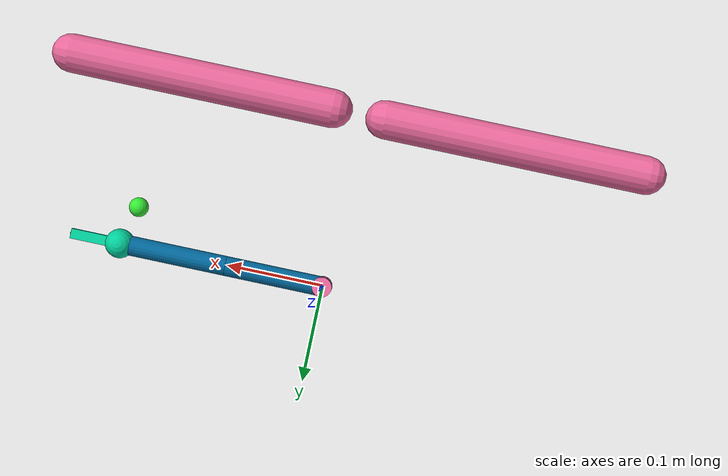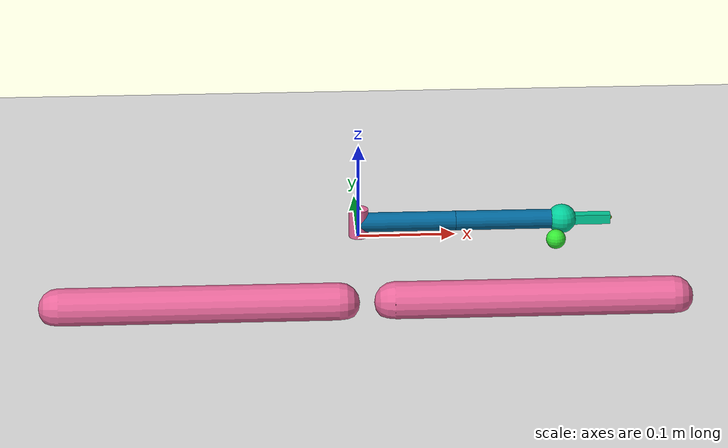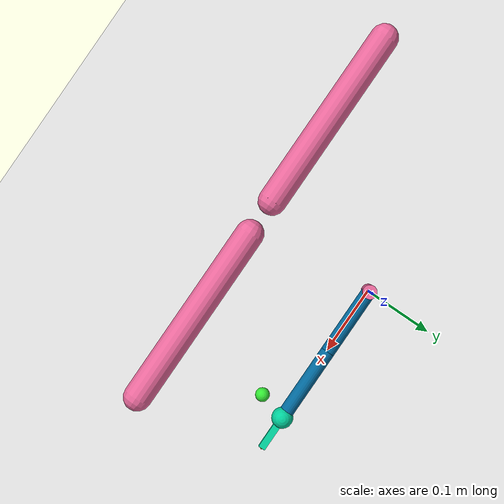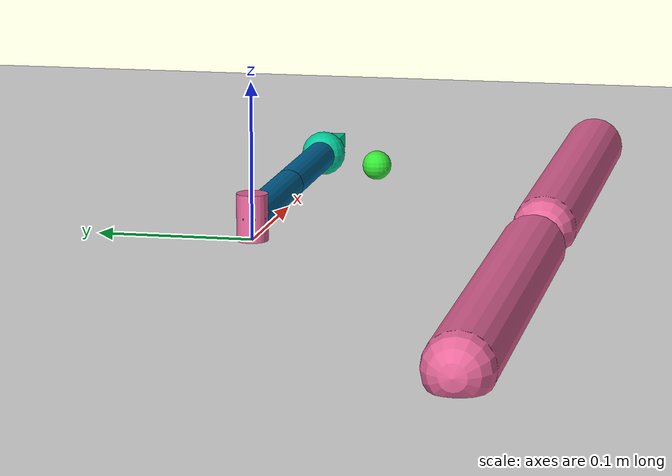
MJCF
<mujoco model="reacher">
	<compiler angle="radian" inertiafromgeom="true"/>
	<default>
		<joint armature="1" damping="1" limited="true"/>
		<geom friction="1 0.1 0.1" contype="0" conaffinity="0" rgba="0.7 0.7 0 1"/>
	</default>
	<option gravity="0 0 -9.81" integrator="RK4" timestep="0.01"/>
	<worldbody>
		<!-- Arena -->
		<geom conaffinity="1" name="ground" pos="0 0 0" rgba="0.9 0.9 0.9 1" size="1 1 10" type="plane"/>
		<geom conaffinity="1" fromto="-.3 -.18 .01 -.027 -.18 .01" name="sideL" rgba="0.9 0.4 0.6 1" size=".02" type="capsule"/>
		<geom conaffinity="1" fromto="0.027 -.18 .01 .3 -.18 .01" name="sideR" rgba="0.9 0.4 0.6 1" size=".02" type="capsule"/>
		<!-- Arm -->
		<geom conaffinity="1" fromto="0 0 0 0 0 0.03" name="root" rgba="0.9 0.4 0.6 1" size=".01" type="cylinder"/>
		<body name="body0" pos="0 0 .015">
			<geom fromto="0 0 0 0.1 0 0" name="link0" rgba="0.0 0.4 0.6 1" size=".01" type="capsule"/>
			<joint axis="0 0 1" limited="false" name="joint0" pos="0 0 0" type="hinge"/>
			<body name="body1" pos="0.1 0 0">
				<joint axis="0 0 1" limited="true" name="joint1" pos="0 0 0" range="-3.0 3.0" type="hinge"/>
				<geom fromto="0 0 0 0.1 0 0" name="link1" rgba="0.0 0.4 0.6 1" size=".01" type="capsule"/>
				<body name="fingertip" pos="0.11 0 0">
					<geom conaffinity="1" contype="1" name="fingertip" pos="0 0 0" rgba="0.0 0.8 0.6 1" size=".015" type="sphere"/>
					<geom conaffinity="1" contype="1" name="peg" mass="0.00001" type="box" pos="0.025 0 0" size="0.025 0.005 0.005" rgba="0.0 0.8 0.6 1"/>
					<body name="peg" pos="0.05 0 0">
								<geom conaffinity="1" contype="1" name="pegtip" type="sphere" size="0.002"/>
					</body>
				</body>
			</body>
		</body>

		<body name="highlevel" pos="0.2 -0.04 0.01">
      		<geom conaffinity="0" contype="0" name="highlevel" pos="0 0 0" rgba="0.2 0.9 0.2 1" size=".01" type="sphere"/>
    	</body>

	</worldbody>
	<actuator>
		<motor ctrllimited="true" ctrlrange="-0.5 0.5" gear="100.0" joint="joint0" forcelimited="true" forcerange="-0.1 0.1"/>
		<motor ctrllimited="true" ctrlrange="-0.5 0.5" gear="100.0" joint="joint1" forcelimited="true" forcerange="-0.1 0.1"/>
	</actuator>
</mujoco>
